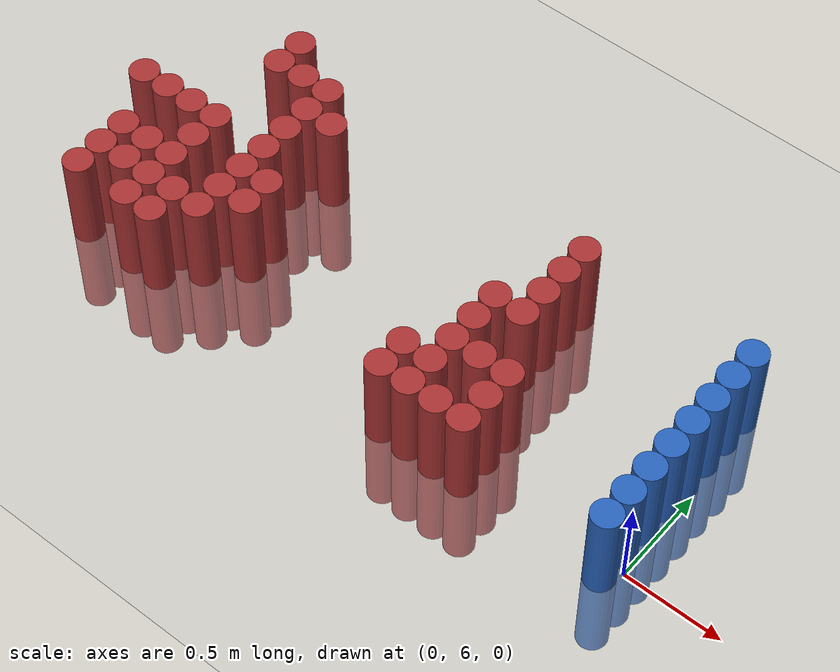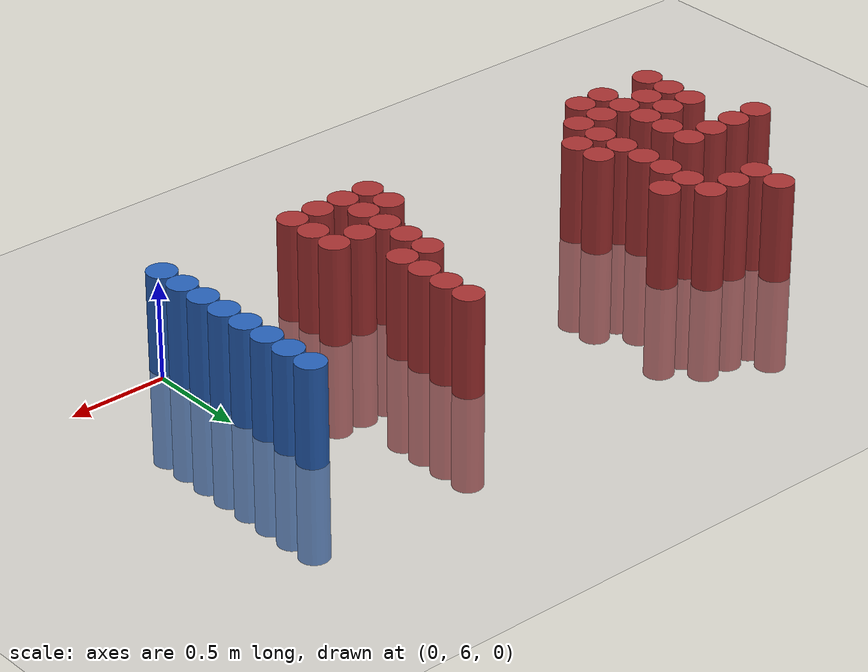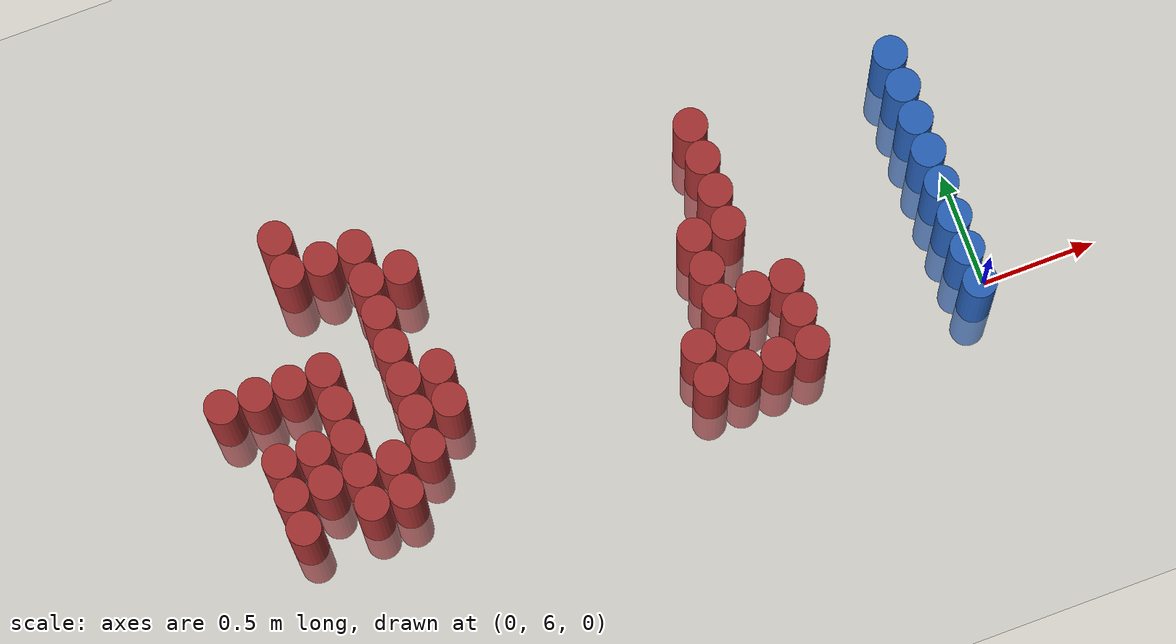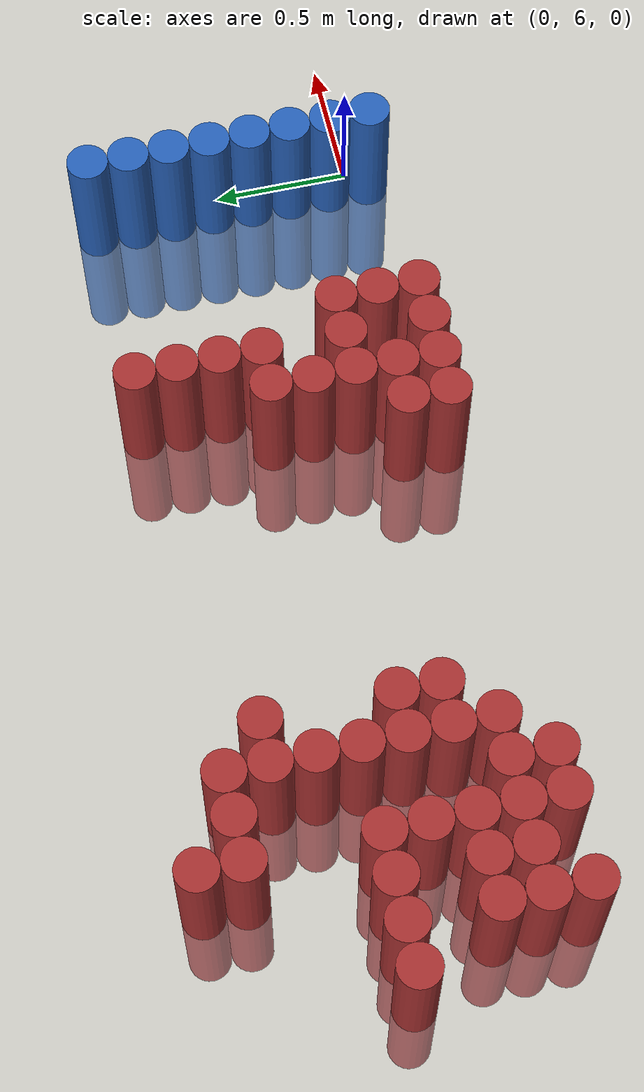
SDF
<sdf version="1.6">
 <world name="default">
  <model name="ground_plane">
   <static>1</static>
   <link name="link">
    <collision name="collision">
     <geometry><plane><normal>0 0 1</normal><size>100 100</size></plane></geometry>
     <surface><friction><ode><mu>100</mu><mu2>50</mu2></ode></friction></surface>
    </collision>
    <visual name="visual">
     <cast_shadows>0</cast_shadows>
     <geometry><plane><normal>0 0 1</normal><size>100 100</size></plane></geometry>
     <material>
      <script><uri>file://media/materials/scripts/gazebo.material</uri><name>Gazebo/Grey</name></script>
     </material>
    </visual>
   </link>
  </model>
  <model name="unit_cylinder_173">
   <static>1</static>
   <pose>-3.225000 6.525000 0.000000 0.000000 0.000000 0.000000</pose>
   <link name="link">
    <inertial>
     <mass>1</mass>
     <inertia><ixx>0.145833</ixx><ixy>0</ixy><ixz>0</ixz><iyy>0.145833</iyy><iyz>0</iyz><izz>0.125</izz></inertia>
    </inertial>
    <collision name="collision">
     <geometry><cylinder><radius>0.075000</radius><length>1</length></cylinder></geometry>
    </collision>
    <visual name="visual">
     <geometry><cylinder><radius>0.075000</radius><length>1</length></cylinder></geometry>
     <material>
      <ambient>0.648000 0.192000 0.192000 1</ambient>
      <diffuse>0.648000 0.192000 0.192000 1</diffuse>
     </material>
     <material>
      <script><name>Gazebo/Grey</name><uri>file://media/materials/scripts/gazebo.material</uri></script>
     </material>
    </visual>
   </link>
  </model>
  <model name="unit_cylinder_182">
   <static>1</static>
   <pose>-3.075000 5.925000 0.000000 0.000000 0.000000 0.000000</pose>
   <link name="link">
    <inertial>
     <mass>1</mass>
     <inertia><ixx>0.145833</ixx><ixy>0</ixy><ixz>0</ixz><iyy>0.145833</iyy><iyz>0</iyz><izz>0.125</izz></inertia>
    </inertial>
    <collision name="collision">
     <geometry><cylinder><radius>0.075000</radius><length>1</length></cylinder></geometry>
    </collision>
    <visual name="visual">
     <geometry><cylinder><radius>0.075000</radius><length>1</length></cylinder></geometry>
     <material>
      <ambient>0.648000 0.192000 0.192000 1</ambient>
      <diffuse>0.648000 0.192000 0.192000 1</diffuse>
     </material>
     <material>
      <script><name>Gazebo/Grey</name><uri>file://media/materials/scripts/gazebo.material</uri></script>
     </material>
    </visual>
   </link>
  </model>
  <model name="unit_cylinder_183">
   <static>1</static>
   <pose>-3.075000 6.075000 0.000000 0.000000 0.000000 0.000000</pose>
   <link name="link">
    <inertial>
     <mass>1</mass>
     <inertia><ixx>0.145833</ixx><ixy>0</ixy><ixz>0</ixz><iyy>0.145833</iyy><iyz>0</iyz><izz>0.125</izz></inertia>
    </inertial>
    <collision name="collision">
     <geometry><cylinder><radius>0.075000</radius><length>1</length></cylinder></geometry>
    </collision>
    <visual name="visual">
     <geometry><cylinder><radius>0.075000</radius><length>1</length></cylinder></geometry>
     <material>
      <ambient>0.648000 0.192000 0.192000 1</ambient>
      <diffuse>0.648000 0.192000 0.192000 1</diffuse>
     </material>
     <material>
      <script><name>Gazebo/Grey</name><uri>file://media/materials/scripts/gazebo.material</uri></script>
     </material>
    </visual>
   </link>
  </model>
  <model name="unit_cylinder_184">
   <static>1</static>
   <pose>-3.075000 6.225000 0.000000 0.000000 0.000000 0.000000</pose>
   <link name="link">
    <inertial>
     <mass>1</mass>
     <inertia><ixx>0.145833</ixx><ixy>0</ixy><ixz>0</ixz><iyy>0.145833</iyy><iyz>0</iyz><izz>0.125</izz></inertia>
    </inertial>
    <collision name="collision">
     <geometry><cylinder><radius>0.075000</radius><length>1</length></cylinder></geometry>
    </collision>
    <visual name="visual">
     <geometry><cylinder><radius>0.075000</radius><length>1</length></cylinder></geometry>
     <material>
      <ambient>0.648000 0.192000 0.192000 1</ambient>
      <diffuse>0.648000 0.192000 0.192000 1</diffuse>
     </material>
     <material>
      <script><name>Gazebo/Grey</name><uri>file://media/materials/scripts/gazebo.material</uri></script>
     </material>
    </visual>
   </link>
  </model>
  <model name="unit_cylinder_185">
   <static>1</static>
   <pose>-3.075000 6.525000 0.000000 0.000000 0.000000 0.000000</pose>
   <link name="link">
    <inertial>
     <mass>1</mass>
     <inertia><ixx>0.145833</ixx><ixy>0</ixy><ixz>0</ixz><iyy>0.145833</iyy><iyz>0</iyz><izz>0.125</izz></inertia>
    </inertial>
    <collision name="collision">
     <geometry><cylinder><radius>0.075000</radius><length>1</length></cylinder></geometry>
    </collision>
    <visual name="visual">
     <geometry><cylinder><radius>0.075000</radius><length>1</length></cylinder></geometry>
     <material>
      <ambient>0.648000 0.192000 0.192000 1</ambient>
      <diffuse>0.648000 0.192000 0.192000 1</diffuse>
     </material>
     <material>
      <script><name>Gazebo/Grey</name><uri>file://media/materials/scripts/gazebo.material</uri></script>
     </material>
    </visual>
   </link>
  </model>
  <model name="unit_cylinder_193">
   <static>1</static>
   <pose>-2.925000 6.075000 0.000000 0.000000 0.000000 0.000000</pose>
   <link name="link">
    <inertial>
     <mass>1</mass>
     <inertia><ixx>0.145833</ixx><ixy>0</ixy><ixz>0</ixz><iyy>0.145833</iyy><iyz>0</iyz><izz>0.125</izz></inertia>
    </inertial>
    <collision name="collision">
     <geometry><cylinder><radius>0.075000</radius><length>1</length></cylinder></geometry>
    </collision>
    <visual name="visual">
     <geometry><cylinder><radius>0.075000</radius><length>1</length></cylinder></geometry>
     <material>
      <ambient>0.648000 0.192000 0.192000 1</ambient>
      <diffuse>0.648000 0.192000 0.192000 1</diffuse>
     </material>
     <material>
      <script><name>Gazebo/Grey</name><uri>file://media/materials/scripts/gazebo.material</uri></script>
     </material>
    </visual>
   </link>
  </model>
  <model name="unit_cylinder_194">
   <static>1</static>
   <pose>-2.925000 6.225000 0.000000 0.000000 0.000000 0.000000</pose>
   <link name="link">
    <inertial>
     <mass>1</mass>
     <inertia><ixx>0.145833</ixx><ixy>0</ixy><ixz>0</ixz><iyy>0.145833</iyy><iyz>0</iyz><izz>0.125</izz></inertia>
    </inertial>
    <collision name="collision">
     <geometry><cylinder><radius>0.075000</radius><length>1</length></cylinder></geometry>
    </collision>
    <visual name="visual">
     <geometry><cylinder><radius>0.075000</radius><length>1</length></cylinder></geometry>
     <material>
      <ambient>0.648000 0.192000 0.192000 1</ambient>
      <diffuse>0.648000 0.192000 0.192000 1</diffuse>
     </material>
     <material>
      <script><name>Gazebo/Grey</name><uri>file://media/materials/scripts/gazebo.material</uri></script>
     </material>
    </visual>
   </link>
  </model>
  <model name="unit_cylinder_195">
   <static>1</static>
   <pose>-2.925000 6.525000 0.000000 0.000000 0.000000 0.000000</pose>
   <link name="link">
    <inertial>
     <mass>1</mass>
     <inertia><ixx>0.145833</ixx><ixy>0</ixy><ixz>0</ixz><iyy>0.145833</iyy><iyz>0</iyz><izz>0.125</izz></inertia>
    </inertial>
    <collision name="collision">
     <geometry><cylinder><radius>0.075000</radius><length>1</length></cylinder></geometry>
    </collision>
    <visual name="visual">
     <geometry><cylinder><radius>0.075000</radius><length>1</length></cylinder></geometry>
     <material>
      <ambient>0.648000 0.192000 0.192000 1</ambient>
      <diffuse>0.648000 0.192000 0.192000 1</diffuse>
     </material>
     <material>
      <script><name>Gazebo/Grey</name><uri>file://media/materials/scripts/gazebo.material</uri></script>
     </material>
    </visual>
   </link>
  </model>
  <model name="unit_cylinder_199">
   <static>1</static>
   <pose>-2.775000 5.925000 0.000000 0.000000 0.000000 0.000000</pose>
   <link name="link">
    <inertial>
     <mass>1</mass>
     <inertia><ixx>0.145833</ixx><ixy>0</ixy><ixz>0</ixz><iyy>0.145833</iyy><iyz>0</iyz><izz>0.125</izz></inertia>
    </inertial>
    <collision name="collision">
     <geometry><cylinder><radius>0.075000</radius><length>1</length></cylinder></geometry>
    </collision>
    <visual name="visual">
     <geometry><cylinder><radius>0.075000</radius><length>1</length></cylinder></geometry>
     <material>
      <ambient>0.648000 0.192000 0.192000 1</ambient>
      <diffuse>0.648000 0.192000 0.192000 1</diffuse>
     </material>
     <material>
      <script><name>Gazebo/Grey</name><uri>file://media/materials/scripts/gazebo.material</uri></script>
     </material>
    </visual>
   </link>
  </model>
  <model name="unit_cylinder_200">
   <static>1</static>
   <pose>-2.775000 6.075000 0.000000 0.000000 0.000000 0.000000</pose>
   <link name="link">
    <inertial>
     <mass>1</mass>
     <inertia><ixx>0.145833</ixx><ixy>0</ixy><ixz>0</ixz><iyy>0.145833</iyy><iyz>0</iyz><izz>0.125</izz></inertia>
    </inertial>
    <collision name="collision">
     <geometry><cylinder><radius>0.075000</radius><length>1</length></cylinder></geometry>
    </collision>
    <visual name="visual">
     <geometry><cylinder><radius>0.075000</radius><length>1</length></cylinder></geometry>
     <material>
      <ambient>0.648000 0.192000 0.192000 1</ambient>
      <diffuse>0.648000 0.192000 0.192000 1</diffuse>
     </material>
     <material>
      <script><name>Gazebo/Grey</name><uri>file://media/materials/scripts/gazebo.material</uri></script>
     </material>
    </visual>
   </link>
  </model>
  <model name="unit_cylinder_201">
   <static>1</static>
   <pose>-2.775000 6.225000 0.000000 0.000000 0.000000 0.000000</pose>
   <link name="link">
    <inertial>
     <mass>1</mass>
     <inertia><ixx>0.145833</ixx><ixy>0</ixy><ixz>0</ixz><iyy>0.145833</iyy><iyz>0</iyz><izz>0.125</izz></inertia>
    </inertial>
    <collision name="collision">
     <geometry><cylinder><radius>0.075000</radius><length>1</length></cylinder></geometry>
    </collision>
    <visual name="visual">
     <geometry><cylinder><radius>0.075000</radius><length>1</length></cylinder></geometry>
     <material>
      <ambient>0.648000 0.192000 0.192000 1</ambient>
      <diffuse>0.648000 0.192000 0.192000 1</diffuse>
     </material>
     <material>
      <script><name>Gazebo/Grey</name><uri>file://media/materials/scripts/gazebo.material</uri></script>
     </material>
    </visual>
   </link>
  </model>
  <model name="unit_cylinder_202">
   <static>1</static>
   <pose>-2.775000 6.375000 0.000000 0.000000 0.000000 0.000000</pose>
   <link name="link">
    <inertial>
     <mass>1</mass>
     <inertia><ixx>0.145833</ixx><ixy>0</ixy><ixz>0</ixz><iyy>0.145833</iyy><iyz>0</iyz><izz>0.125</izz></inertia>
    </inertial>
    <collision name="collision">
     <geometry><cylinder><radius>0.075000</radius><length>1</length></cylinder></geometry>
    </collision>
    <visual name="visual">
     <geometry><cylinder><radius>0.075000</radius><length>1</length></cylinder></geometry>
     <material>
      <ambient>0.648000 0.192000 0.192000 1</ambient>
      <diffuse>0.648000 0.192000 0.192000 1</diffuse>
     </material>
     <material>
      <script><name>Gazebo/Grey</name><uri>file://media/materials/scripts/gazebo.material</uri></script>
     </material>
    </visual>
   </link>
  </model>
  <model name="unit_cylinder_203">
   <static>1</static>
   <pose>-2.775000 6.525000 0.000000 0.000000 0.000000 0.000000</pose>
   <link name="link">
    <inertial>
     <mass>1</mass>
     <inertia><ixx>0.145833</ixx><ixy>0</ixy><ixz>0</ixz><iyy>0.145833</iyy><iyz>0</iyz><izz>0.125</izz></inertia>
    </inertial>
    <collision name="collision">
     <geometry><cylinder><radius>0.075000</radius><length>1</length></cylinder></geometry>
    </collision>
    <visual name="visual">
     <geometry><cylinder><radius>0.075000</radius><length>1</length></cylinder></geometry>
     <material>
      <ambient>0.648000 0.192000 0.192000 1</ambient>
      <diffuse>0.648000 0.192000 0.192000 1</diffuse>
     </material>
     <material>
      <script><name>Gazebo/Grey</name><uri>file://media/materials/scripts/gazebo.material</uri></script>
     </material>
    </visual>
   </link>
  </model>
  <model name="unit_cylinder_204">
   <static>1</static>
   <pose>-2.775000 6.975000 0.000000 0.000000 0.000000 0.000000</pose>
   <link name="link">
    <inertial>
     <mass>1</mass>
     <inertia><ixx>0.145833</ixx><ixy>0</ixy><ixz>0</ixz><iyy>0.145833</iyy><iyz>0</iyz><izz>0.125</izz></inertia>
    </inertial>
    <collision name="collision">
     <geometry><cylinder><radius>0.075000</radius><length>1</length></cylinder></geometry>
    </collision>
    <visual name="visual">
     <geometry><cylinder><radius>0.075000</radius><length>1</length></cylinder></geometry>
     <material>
      <ambient>0.648000 0.192000 0.192000 1</ambient>
      <diffuse>0.648000 0.192000 0.192000 1</diffuse>
     </material>
     <material>
      <script><name>Gazebo/Grey</name><uri>file://media/materials/scripts/gazebo.material</uri></script>
     </material>
    </visual>
   </link>
  </model>
  <model name="unit_cylinder_205">
   <static>1</static>
   <pose>-2.775000 7.125000 0.000000 0.000000 0.000000 0.000000</pose>
   <link name="link">
    <inertial>
     <mass>1</mass>
     <inertia><ixx>0.145833</ixx><ixy>0</ixy><ixz>0</ixz><iyy>0.145833</iyy><iyz>0</iyz><izz>0.125</izz></inertia>
    </inertial>
    <collision name="collision">
     <geometry><cylinder><radius>0.075000</radius><length>1</length></cylinder></geometry>
    </collision>
    <visual name="visual">
     <geometry><cylinder><radius>0.075000</radius><length>1</length></cylinder></geometry>
     <material>
      <ambient>0.648000 0.192000 0.192000 1</ambient>
      <diffuse>0.648000 0.192000 0.192000 1</diffuse>
     </material>
     <material>
      <script><name>Gazebo/Grey</name><uri>file://media/materials/scripts/gazebo.material</uri></script>
     </material>
    </visual>
   </link>
  </model>
  <model name="unit_cylinder_210">
   <static>1</static>
   <pose>-2.625000 5.925000 0.000000 0.000000 0.000000 0.000000</pose>
   <link name="link">
    <inertial>
     <mass>1</mass>
     <inertia><ixx>0.145833</ixx><ixy>0</ixy><ixz>0</ixz><iyy>0.145833</iyy><iyz>0</iyz><izz>0.125</izz></inertia>
    </inertial>
    <collision name="collision">
     <geometry><cylinder><radius>0.075000</radius><length>1</length></cylinder></geometry>
    </collision>
    <visual name="visual">
     <geometry><cylinder><radius>0.075000</radius><length>1</length></cylinder></geometry>
     <material>
      <ambient>0.648000 0.192000 0.192000 1</ambient>
      <diffuse>0.648000 0.192000 0.192000 1</diffuse>
     </material>
     <material>
      <script><name>Gazebo/Grey</name><uri>file://media/materials/scripts/gazebo.material</uri></script>
     </material>
    </visual>
   </link>
  </model>
  <model name="unit_cylinder_211">
   <static>1</static>
   <pose>-2.625000 6.075000 0.000000 0.000000 0.000000 0.000000</pose>
   <link name="link">
    <inertial>
     <mass>1</mass>
     <inertia><ixx>0.145833</ixx><ixy>0</ixy><ixz>0</ixz><iyy>0.145833</iyy><iyz>0</iyz><izz>0.125</izz></inertia>
    </inertial>
    <collision name="collision">
     <geometry><cylinder><radius>0.075000</radius><length>1</length></cylinder></geometry>
    </collision>
    <visual name="visual">
     <geometry><cylinder><radius>0.075000</radius><length>1</length></cylinder></geometry>
     <material>
      <ambient>0.648000 0.192000 0.192000 1</ambient>
      <diffuse>0.648000 0.192000 0.192000 1</diffuse>
     </material>
     <material>
      <script><name>Gazebo/Grey</name><uri>file://media/materials/scripts/gazebo.material</uri></script>
     </material>
    </visual>
   </link>
  </model>
  <model name="unit_cylinder_212">
   <static>1</static>
   <pose>-2.625000 6.975000 0.000000 0.000000 0.000000 0.000000</pose>
   <link name="link">
    <inertial>
     <mass>1</mass>
     <inertia><ixx>0.145833</ixx><ixy>0</ixy><ixz>0</ixz><iyy>0.145833</iyy><iyz>0</iyz><izz>0.125</izz></inertia>
    </inertial>
    <collision name="collision">
     <geometry><cylinder><radius>0.075000</radius><length>1</length></cylinder></geometry>
    </collision>
    <visual name="visual">
     <geometry><cylinder><radius>0.075000</radius><length>1</length></cylinder></geometry>
     <material>
      <ambient>0.648000 0.192000 0.192000 1</ambient>
      <diffuse>0.648000 0.192000 0.192000 1</diffuse>
     </material>
     <material>
      <script><name>Gazebo/Grey</name><uri>file://media/materials/scripts/gazebo.material</uri></script>
     </material>
    </visual>
   </link>
  </model>
  <model name="unit_cylinder_216">
   <static>1</static>
   <pose>-2.475000 6.075000 0.000000 0.000000 0.000000 0.000000</pose>
   <link name="link">
    <inertial>
     <mass>1</mass>
     <inertia><ixx>0.145833</ixx><ixy>0</ixy><ixz>0</ixz><iyy>0.145833</iyy><iyz>0</iyz><izz>0.125</izz></inertia>
    </inertial>
    <collision name="collision">
     <geometry><cylinder><radius>0.075000</radius><length>1</length></cylinder></geometry>
    </collision>
    <visual name="visual">
     <geometry><cylinder><radius>0.075000</radius><length>1</length></cylinder></geometry>
     <material>
      <ambient>0.648000 0.192000 0.192000 1</ambient>
      <diffuse>0.648000 0.192000 0.192000 1</diffuse>
     </material>
     <material>
      <script><name>Gazebo/Grey</name><uri>file://media/materials/scripts/gazebo.material</uri></script>
     </material>
    </visual>
   </link>
  </model>
  <model name="unit_cylinder_217">
   <static>1</static>
   <pose>-2.475000 6.225000 0.000000 0.000000 0.000000 0.000000</pose>
   <link name="link">
    <inertial>
     <mass>1</mass>
     <inertia><ixx>0.145833</ixx><ixy>0</ixy><ixz>0</ixz><iyy>0.145833</iyy><iyz>0</iyz><izz>0.125</izz></inertia>
    </inertial>
    <collision name="collision">
     <geometry><cylinder><radius>0.075000</radius><length>1</length></cylinder></geometry>
    </collision>
    <visual name="visual">
     <geometry><cylinder><radius>0.075000</radius><length>1</length></cylinder></geometry>
     <material>
      <ambient>0.648000 0.192000 0.192000 1</ambient>
      <diffuse>0.648000 0.192000 0.192000 1</diffuse>
     </material>
     <material>
      <script><name>Gazebo/Grey</name><uri>file://media/materials/scripts/gazebo.material</uri></script>
     </material>
    </visual>
   </link>
  </model>
  <model name="unit_cylinder_218">
   <static>1</static>
   <pose>-2.475000 6.375000 0.000000 0.000000 0.000000 0.000000</pose>
   <link name="link">
    <inertial>
     <mass>1</mass>
     <inertia><ixx>0.145833</ixx><ixy>0</ixy><ixz>0</ixz><iyy>0.145833</iyy><iyz>0</iyz><izz>0.125</izz></inertia>
    </inertial>
    <collision name="collision">
     <geometry><cylinder><radius>0.075000</radius><length>1</length></cylinder></geometry>
    </collision>
    <visual name="visual">
     <geometry><cylinder><radius>0.075000</radius><length>1</length></cylinder></geometry>
     <material>
      <ambient>0.648000 0.192000 0.192000 1</ambient>
      <diffuse>0.648000 0.192000 0.192000 1</diffuse>
     </material>
     <material>
      <script><name>Gazebo/Grey</name><uri>file://media/materials/scripts/gazebo.material</uri></script>
     </material>
    </visual>
   </link>
  </model>
  <model name="unit_cylinder_219">
   <static>1</static>
   <pose>-2.475000 6.525000 0.000000 0.000000 0.000000 0.000000</pose>
   <link name="link">
    <inertial>
     <mass>1</mass>
     <inertia><ixx>0.145833</ixx><ixy>0</ixy><ixz>0</ixz><iyy>0.145833</iyy><iyz>0</iyz><izz>0.125</izz></inertia>
    </inertial>
    <collision name="collision">
     <geometry><cylinder><radius>0.075000</radius><length>1</length></cylinder></geometry>
    </collision>
    <visual name="visual">
     <geometry><cylinder><radius>0.075000</radius><length>1</length></cylinder></geometry>
     <material>
      <ambient>0.648000 0.192000 0.192000 1</ambient>
      <diffuse>0.648000 0.192000 0.192000 1</diffuse>
     </material>
     <material>
      <script><name>Gazebo/Grey</name><uri>file://media/materials/scripts/gazebo.material</uri></script>
     </material>
    </visual>
   </link>
  </model>
  <model name="unit_cylinder_220">
   <static>1</static>
   <pose>-2.475000 6.675000 0.000000 0.000000 0.000000 0.000000</pose>
   <link name="link">
    <inertial>
     <mass>1</mass>
     <inertia><ixx>0.145833</ixx><ixy>0</ixy><ixz>0</ixz><iyy>0.145833</iyy><iyz>0</iyz><izz>0.125</izz></inertia>
    </inertial>
    <collision name="collision">
     <geometry><cylinder><radius>0.075000</radius><length>1</length></cylinder></geometry>
    </collision>
    <visual name="visual">
     <geometry><cylinder><radius>0.075000</radius><length>1</length></cylinder></geometry>
     <material>
      <ambient>0.648000 0.192000 0.192000 1</ambient>
      <diffuse>0.648000 0.192000 0.192000 1</diffuse>
     </material>
     <material>
      <script><name>Gazebo/Grey</name><uri>file://media/materials/scripts/gazebo.material</uri></script>
     </material>
    </visual>
   </link>
  </model>
  <model name="unit_cylinder_221">
   <static>1</static>
   <pose>-2.475000 6.825000 0.000000 0.000000 0.000000 0.000000</pose>
   <link name="link">
    <inertial>
     <mass>1</mass>
     <inertia><ixx>0.145833</ixx><ixy>0</ixy><ixz>0</ixz><iyy>0.145833</iyy><iyz>0</iyz><izz>0.125</izz></inertia>
    </inertial>
    <collision name="collision">
     <geometry><cylinder><radius>0.075000</radius><length>1</length></cylinder></geometry>
    </collision>
    <visual name="visual">
     <geometry><cylinder><radius>0.075000</radius><length>1</length></cylinder></geometry>
     <material>
      <ambient>0.648000 0.192000 0.192000 1</ambient>
      <diffuse>0.648000 0.192000 0.192000 1</diffuse>
     </material>
     <material>
      <script><name>Gazebo/Grey</name><uri>file://media/materials/scripts/gazebo.material</uri></script>
     </material>
    </visual>
   </link>
  </model>
  <model name="unit_cylinder_222">
   <static>1</static>
   <pose>-2.475000 6.975000 0.000000 0.000000 0.000000 0.000000</pose>
   <link name="link">
    <inertial>
     <mass>1</mass>
     <inertia><ixx>0.145833</ixx><ixy>0</ixy><ixz>0</ixz><iyy>0.145833</iyy><iyz>0</iyz><izz>0.125</izz></inertia>
    </inertial>
    <collision name="collision">
     <geometry><cylinder><radius>0.075000</radius><length>1</length></cylinder></geometry>
    </collision>
    <visual name="visual">
     <geometry><cylinder><radius>0.075000</radius><length>1</length></cylinder></geometry>
     <material>
      <ambient>0.648000 0.192000 0.192000 1</ambient>
      <diffuse>0.648000 0.192000 0.192000 1</diffuse>
     </material>
     <material>
      <script><name>Gazebo/Grey</name><uri>file://media/materials/scripts/gazebo.material</uri></script>
     </material>
    </visual>
   </link>
  </model>
  <model name="unit_cylinder_226">
   <static>1</static>
   <pose>-2.325000 6.225000 0.000000 0.000000 0.000000 0.000000</pose>
   <link name="link">
    <inertial>
     <mass>1</mass>
     <inertia><ixx>0.145833</ixx><ixy>0</ixy><ixz>0</ixz><iyy>0.145833</iyy><iyz>0</iyz><izz>0.125</izz></inertia>
    </inertial>
    <collision name="collision">
     <geometry><cylinder><radius>0.075000</radius><length>1</length></cylinder></geometry>
    </collision>
    <visual name="visual">
     <geometry><cylinder><radius>0.075000</radius><length>1</length></cylinder></geometry>
     <material>
      <ambient>0.648000 0.192000 0.192000 1</ambient>
      <diffuse>0.648000 0.192000 0.192000 1</diffuse>
     </material>
     <material>
      <script><name>Gazebo/Grey</name><uri>file://media/materials/scripts/gazebo.material</uri></script>
     </material>
    </visual>
   </link>
  </model>
  <model name="unit_cylinder_227">
   <static>1</static>
   <pose>-2.325000 6.375000 0.000000 0.000000 0.000000 0.000000</pose>
   <link name="link">
    <inertial>
     <mass>1</mass>
     <inertia><ixx>0.145833</ixx><ixy>0</ixy><ixz>0</ixz><iyy>0.145833</iyy><iyz>0</iyz><izz>0.125</izz></inertia>
    </inertial>
    <collision name="collision">
     <geometry><cylinder><radius>0.075000</radius><length>1</length></cylinder></geometry>
    </collision>
    <visual name="visual">
     <geometry><cylinder><radius>0.075000</radius><length>1</length></cylinder></geometry>
     <material>
      <ambient>0.648000 0.192000 0.192000 1</ambient>
      <diffuse>0.648000 0.192000 0.192000 1</diffuse>
     </material>
     <material>
      <script><name>Gazebo/Grey</name><uri>file://media/materials/scripts/gazebo.material</uri></script>
     </material>
    </visual>
   </link>
  </model>
  <model name="unit_cylinder_228">
   <static>1</static>
   <pose>-2.325000 6.825000 0.000000 0.000000 0.000000 0.000000</pose>
   <link name="link">
    <inertial>
     <mass>1</mass>
     <inertia><ixx>0.145833</ixx><ixy>0</ixy><ixz>0</ixz><iyy>0.145833</iyy><iyz>0</iyz><izz>0.125</izz></inertia>
    </inertial>
    <collision name="collision">
     <geometry><cylinder><radius>0.075000</radius><length>1</length></cylinder></geometry>
    </collision>
    <visual name="visual">
     <geometry><cylinder><radius>0.075000</radius><length>1</length></cylinder></geometry>
     <material>
      <ambient>0.648000 0.192000 0.192000 1</ambient>
      <diffuse>0.648000 0.192000 0.192000 1</diffuse>
     </material>
     <material>
      <script><name>Gazebo/Grey</name><uri>file://media/materials/scripts/gazebo.material</uri></script>
     </material>
    </visual>
   </link>
  </model>
  <model name="unit_cylinder_239">
   <static>1</static>
   <pose>-1.275000 5.925000 0.000000 0.000000 0.000000 0.000000</pose>
   <link name="link">
    <inertial>
     <mass>1</mass>
     <inertia><ixx>0.145833</ixx><ixy>0</ixy><ixz>0</ixz><iyy>0.145833</iyy><iyz>0</iyz><izz>0.125</izz></inertia>
    </inertial>
    <collision name="collision">
     <geometry><cylinder><radius>0.075000</radius><length>1</length></cylinder></geometry>
    </collision>
    <visual name="visual">
     <geometry><cylinder><radius>0.075000</radius><length>1</length></cylinder></geometry>
     <material>
      <ambient>0.648000 0.192000 0.192000 1</ambient>
      <diffuse>0.648000 0.192000 0.192000 1</diffuse>
     </material>
     <material>
      <script><name>Gazebo/Grey</name><uri>file://media/materials/scripts/gazebo.material</uri></script>
     </material>
    </visual>
   </link>
  </model>
  <model name="unit_cylinder_240">
   <static>1</static>
   <pose>-1.275000 6.075000 0.000000 0.000000 0.000000 0.000000</pose>
   <link name="link">
    <inertial>
     <mass>1</mass>
     <inertia><ixx>0.145833</ixx><ixy>0</ixy><ixz>0</ixz><iyy>0.145833</iyy><iyz>0</iyz><izz>0.125</izz></inertia>
    </inertial>
    <collision name="collision">
     <geometry><cylinder><radius>0.075000</radius><length>1</length></cylinder></geometry>
    </collision>
    <visual name="visual">
     <geometry><cylinder><radius>0.075000</radius><length>1</length></cylinder></geometry>
     <material>
      <ambient>0.648000 0.192000 0.192000 1</ambient>
      <diffuse>0.648000 0.192000 0.192000 1</diffuse>
     </material>
     <material>
      <script><name>Gazebo/Grey</name><uri>file://media/materials/scripts/gazebo.material</uri></script>
     </material>
    </visual>
   </link>
  </model>
  <model name="unit_cylinder_244">
   <static>1</static>
   <pose>-1.125000 5.925000 0.000000 0.000000 0.000000 0.000000</pose>
   <link name="link">
    <inertial>
     <mass>1</mass>
     <inertia><ixx>0.145833</ixx><ixy>0</ixy><ixz>0</ixz><iyy>0.145833</iyy><iyz>0</iyz><izz>0.125</izz></inertia>
    </inertial>
    <collision name="collision">
     <geometry><cylinder><radius>0.075000</radius><length>1</length></cylinder></geometry>
    </collision>
    <visual name="visual">
     <geometry><cylinder><radius>0.075000</radius><length>1</length></cylinder></geometry>
     <material>
      <ambient>0.648000 0.192000 0.192000 1</ambient>
      <diffuse>0.648000 0.192000 0.192000 1</diffuse>
     </material>
     <material>
      <script><name>Gazebo/Grey</name><uri>file://media/materials/scripts/gazebo.material</uri></script>
     </material>
    </visual>
   </link>
  </model>
  <model name="unit_cylinder_245">
   <static>1</static>
   <pose>-1.125000 6.075000 0.000000 0.000000 0.000000 0.000000</pose>
   <link name="link">
    <inertial>
     <mass>1</mass>
     <inertia><ixx>0.145833</ixx><ixy>0</ixy><ixz>0</ixz><iyy>0.145833</iyy><iyz>0</iyz><izz>0.125</izz></inertia>
    </inertial>
    <collision name="collision">
     <geometry><cylinder><radius>0.075000</radius><length>1</length></cylinder></geometry>
    </collision>
    <visual name="visual">
     <geometry><cylinder><radius>0.075000</radius><length>1</length></cylinder></geometry>
     <material>
      <ambient>0.648000 0.192000 0.192000 1</ambient>
      <diffuse>0.648000 0.192000 0.192000 1</diffuse>
     </material>
     <material>
      <script><name>Gazebo/Grey</name><uri>file://media/materials/scripts/gazebo.material</uri></script>
     </material>
    </visual>
   </link>
  </model>
  <model name="unit_cylinder_246">
   <static>1</static>
   <pose>-1.125000 6.225000 0.000000 0.000000 0.000000 0.000000</pose>
   <link name="link">
    <inertial>
     <mass>1</mass>
     <inertia><ixx>0.145833</ixx><ixy>0</ixy><ixz>0</ixz><iyy>0.145833</iyy><iyz>0</iyz><izz>0.125</izz></inertia>
    </inertial>
    <collision name="collision">
     <geometry><cylinder><radius>0.075000</radius><length>1</length></cylinder></geometry>
    </collision>
    <visual name="visual">
     <geometry><cylinder><radius>0.075000</radius><length>1</length></cylinder></geometry>
     <material>
      <ambient>0.648000 0.192000 0.192000 1</ambient>
      <diffuse>0.648000 0.192000 0.192000 1</diffuse>
     </material>
     <material>
      <script><name>Gazebo/Grey</name><uri>file://media/materials/scripts/gazebo.material</uri></script>
     </material>
    </visual>
   </link>
  </model>
  <model name="unit_cylinder_247">
   <static>1</static>
   <pose>-1.125000 6.375000 0.000000 0.000000 0.000000 0.000000</pose>
   <link name="link">
    <inertial>
     <mass>1</mass>
     <inertia><ixx>0.145833</ixx><ixy>0</ixy><ixz>0</ixz><iyy>0.145833</iyy><iyz>0</iyz><izz>0.125</izz></inertia>
    </inertial>
    <collision name="collision">
     <geometry><cylinder><radius>0.075000</radius><length>1</length></cylinder></geometry>
    </collision>
    <visual name="visual">
     <geometry><cylinder><radius>0.075000</radius><length>1</length></cylinder></geometry>
     <material>
      <ambient>0.648000 0.192000 0.192000 1</ambient>
      <diffuse>0.648000 0.192000 0.192000 1</diffuse>
     </material>
     <material>
      <script><name>Gazebo/Grey</name><uri>file://media/materials/scripts/gazebo.material</uri></script>
     </material>
    </visual>
   </link>
  </model>
  <model name="unit_cylinder_248">
   <static>1</static>
   <pose>-1.125000 6.525000 0.000000 0.000000 0.000000 0.000000</pose>
   <link name="link">
    <inertial>
     <mass>1</mass>
     <inertia><ixx>0.145833</ixx><ixy>0</ixy><ixz>0</ixz><iyy>0.145833</iyy><iyz>0</iyz><izz>0.125</izz></inertia>
    </inertial>
    <collision name="collision">
     <geometry><cylinder><radius>0.075000</radius><length>1</length></cylinder></geometry>
    </collision>
    <visual name="visual">
     <geometry><cylinder><radius>0.075000</radius><length>1</length></cylinder></geometry>
     <material>
      <ambient>0.648000 0.192000 0.192000 1</ambient>
      <diffuse>0.648000 0.192000 0.192000 1</diffuse>
     </material>
     <material>
      <script><name>Gazebo/Grey</name><uri>file://media/materials/scripts/gazebo.material</uri></script>
     </material>
    </visual>
   </link>
  </model>
  <model name="unit_cylinder_253">
   <static>1</static>
   <pose>-0.975000 5.925000 0.000000 0.000000 0.000000 0.000000</pose>
   <link name="link">
    <inertial>
     <mass>1</mass>
     <inertia><ixx>0.145833</ixx><ixy>0</ixy><ixz>0</ixz><iyy>0.145833</iyy><iyz>0</iyz><izz>0.125</izz></inertia>
    </inertial>
    <collision name="collision">
     <geometry><cylinder><radius>0.075000</radius><length>1</length></cylinder></geometry>
    </collision>
    <visual name="visual">
     <geometry><cylinder><radius>0.075000</radius><length>1</length></cylinder></geometry>
     <material>
      <ambient>0.648000 0.192000 0.192000 1</ambient>
      <diffuse>0.648000 0.192000 0.192000 1</diffuse>
     </material>
     <material>
      <script><name>Gazebo/Grey</name><uri>file://media/materials/scripts/gazebo.material</uri></script>
     </material>
    </visual>
   </link>
  </model>
  <model name="unit_cylinder_254">
   <static>1</static>
   <pose>-0.975000 6.225000 0.000000 0.000000 0.000000 0.000000</pose>
   <link name="link">
    <inertial>
     <mass>1</mass>
     <inertia><ixx>0.145833</ixx><ixy>0</ixy><ixz>0</ixz><iyy>0.145833</iyy><iyz>0</iyz><izz>0.125</izz></inertia>
    </inertial>
    <collision name="collision">
     <geometry><cylinder><radius>0.075000</radius><length>1</length></cylinder></geometry>
    </collision>
    <visual name="visual">
     <geometry><cylinder><radius>0.075000</radius><length>1</length></cylinder></geometry>
     <material>
      <ambient>0.648000 0.192000 0.192000 1</ambient>
      <diffuse>0.648000 0.192000 0.192000 1</diffuse>
     </material>
     <material>
      <script><name>Gazebo/Grey</name><uri>file://media/materials/scripts/gazebo.material</uri></script>
     </material>
    </visual>
   </link>
  </model>
  <model name="unit_cylinder_255">
   <static>1</static>
   <pose>-0.975000 6.525000 0.000000 0.000000 0.000000 0.000000</pose>
   <link name="link">
    <inertial>
     <mass>1</mass>
     <inertia><ixx>0.145833</ixx><ixy>0</ixy><ixz>0</ixz><iyy>0.145833</iyy><iyz>0</iyz><izz>0.125</izz></inertia>
    </inertial>
    <collision name="collision">
     <geometry><cylinder><radius>0.075000</radius><length>1</length></cylinder></geometry>
    </collision>
    <visual name="visual">
     <geometry><cylinder><radius>0.075000</radius><length>1</length></cylinder></geometry>
     <material>
      <ambient>0.648000 0.192000 0.192000 1</ambient>
      <diffuse>0.648000 0.192000 0.192000 1</diffuse>
     </material>
     <material>
      <script><name>Gazebo/Grey</name><uri>file://media/materials/scripts/gazebo.material</uri></script>
     </material>
    </visual>
   </link>
  </model>
  <model name="unit_cylinder_256">
   <static>1</static>
   <pose>-0.975000 6.675000 0.000000 0.000000 0.000000 0.000000</pose>
   <link name="link">
    <inertial>
     <mass>1</mass>
     <inertia><ixx>0.145833</ixx><ixy>0</ixy><ixz>0</ixz><iyy>0.145833</iyy><iyz>0</iyz><izz>0.125</izz></inertia>
    </inertial>
    <collision name="collision">
     <geometry><cylinder><radius>0.075000</radius><length>1</length></cylinder></geometry>
    </collision>
    <visual name="visual">
     <geometry><cylinder><radius>0.075000</radius><length>1</length></cylinder></geometry>
     <material>
      <ambient>0.648000 0.192000 0.192000 1</ambient>
      <diffuse>0.648000 0.192000 0.192000 1</diffuse>
     </material>
     <material>
      <script><name>Gazebo/Grey</name><uri>file://media/materials/scripts/gazebo.material</uri></script>
     </material>
    </visual>
   </link>
  </model>
  <model name="unit_cylinder_257">
   <static>1</static>
   <pose>-0.975000 6.825000 0.000000 0.000000 0.000000 0.000000</pose>
   <link name="link">
    <inertial>
     <mass>1</mass>
     <inertia><ixx>0.145833</ixx><ixy>0</ixy><ixz>0</ixz><iyy>0.145833</iyy><iyz>0</iyz><izz>0.125</izz></inertia>
    </inertial>
    <collision name="collision">
     <geometry><cylinder><radius>0.075000</radius><length>1</length></cylinder></geometry>
    </collision>
    <visual name="visual">
     <geometry><cylinder><radius>0.075000</radius><length>1</length></cylinder></geometry>
     <material>
      <ambient>0.648000 0.192000 0.192000 1</ambient>
      <diffuse>0.648000 0.192000 0.192000 1</diffuse>
     </material>
     <material>
      <script><name>Gazebo/Grey</name><uri>file://media/materials/scripts/gazebo.material</uri></script>
     </material>
    </visual>
   </link>
  </model>
  <model name="unit_cylinder_258">
   <static>1</static>
   <pose>-0.975000 6.975000 0.000000 0.000000 0.000000 0.000000</pose>
   <link name="link">
    <inertial>
     <mass>1</mass>
     <inertia><ixx>0.145833</ixx><ixy>0</ixy><ixz>0</ixz><iyy>0.145833</iyy><iyz>0</iyz><izz>0.125</izz></inertia>
    </inertial>
    <collision name="collision">
     <geometry><cylinder><radius>0.075000</radius><length>1</length></cylinder></geometry>
    </collision>
    <visual name="visual">
     <geometry><cylinder><radius>0.075000</radius><length>1</length></cylinder></geometry>
     <material>
      <ambient>0.648000 0.192000 0.192000 1</ambient>
      <diffuse>0.648000 0.192000 0.192000 1</diffuse>
     </material>
     <material>
      <script><name>Gazebo/Grey</name><uri>file://media/materials/scripts/gazebo.material</uri></script>
     </material>
    </visual>
   </link>
  </model>
  <model name="unit_cylinder_262">
   <static>1</static>
   <pose>-0.825000 5.925000 0.000000 0.000000 0.000000 0.000000</pose>
   <link name="link">
    <inertial>
     <mass>1</mass>
     <inertia><ixx>0.145833</ixx><ixy>0</ixy><ixz>0</ixz><iyy>0.145833</iyy><iyz>0</iyz><izz>0.125</izz></inertia>
    </inertial>
    <collision name="collision">
     <geometry><cylinder><radius>0.075000</radius><length>1</length></cylinder></geometry>
    </collision>
    <visual name="visual">
     <geometry><cylinder><radius>0.075000</radius><length>1</length></cylinder></geometry>
     <material>
      <ambient>0.648000 0.192000 0.192000 1</ambient>
      <diffuse>0.648000 0.192000 0.192000 1</diffuse>
     </material>
     <material>
      <script><name>Gazebo/Grey</name><uri>file://media/materials/scripts/gazebo.material</uri></script>
     </material>
    </visual>
   </link>
  </model>
  <model name="unit_cylinder_263">
   <static>1</static>
   <pose>-0.825000 6.075000 0.000000 0.000000 0.000000 0.000000</pose>
   <link name="link">
    <inertial>
     <mass>1</mass>
     <inertia><ixx>0.145833</ixx><ixy>0</ixy><ixz>0</ixz><iyy>0.145833</iyy><iyz>0</iyz><izz>0.125</izz></inertia>
    </inertial>
    <collision name="collision">
     <geometry><cylinder><radius>0.075000</radius><length>1</length></cylinder></geometry>
    </collision>
    <visual name="visual">
     <geometry><cylinder><radius>0.075000</radius><length>1</length></cylinder></geometry>
     <material>
      <ambient>0.648000 0.192000 0.192000 1</ambient>
      <diffuse>0.648000 0.192000 0.192000 1</diffuse>
     </material>
     <material>
      <script><name>Gazebo/Grey</name><uri>file://media/materials/scripts/gazebo.material</uri></script>
     </material>
    </visual>
   </link>
  </model>
  <model name="unit_cylinder_264">
   <static>1</static>
   <pose>-0.825000 6.225000 0.000000 0.000000 0.000000 0.000000</pose>
   <link name="link">
    <inertial>
     <mass>1</mass>
     <inertia><ixx>0.145833</ixx><ixy>0</ixy><ixz>0</ixz><iyy>0.145833</iyy><iyz>0</iyz><izz>0.125</izz></inertia>
    </inertial>
    <collision name="collision">
     <geometry><cylinder><radius>0.075000</radius><length>1</length></cylinder></geometry>
    </collision>
    <visual name="visual">
     <geometry><cylinder><radius>0.075000</radius><length>1</length></cylinder></geometry>
     <material>
      <ambient>0.648000 0.192000 0.192000 1</ambient>
      <diffuse>0.648000 0.192000 0.192000 1</diffuse>
     </material>
     <material>
      <script><name>Gazebo/Grey</name><uri>file://media/materials/scripts/gazebo.material</uri></script>
     </material>
    </visual>
   </link>
  </model>
  <model name="unit_cylinder_290">
   <static>1</static>
   <pose>-0.075000 5.925000 0.000000 0.000000 0.000000 0.000000</pose>
   <link name="link">
    <inertial>
     <mass>1</mass>
     <inertia><ixx>0.145833</ixx><ixy>0</ixy><ixz>0</ixz><iyy>0.145833</iyy><iyz>0</iyz><izz>0.125</izz></inertia>
    </inertial>
    <collision name="collision">
     <geometry><cylinder><radius>0.075000</radius><length>1</length></cylinder></geometry>
    </collision>
    <visual name="visual">
     <geometry><cylinder><radius>0.075000</radius><length>1</length></cylinder></geometry>
     <material>
      <ambient>0.152000 0.379000 0.720000 1</ambient>
      <diffuse>0.152000 0.379000 0.720000 1</diffuse>
     </material>
     <material>
      <script><name>Gazebo/Grey</name><uri>file://media/materials/scripts/gazebo.material</uri></script>
     </material>
    </visual>
   </link>
  </model>
  <model name="unit_cylinder_291">
   <static>1</static>
   <pose>-0.075000 6.075000 0.000000 0.000000 0.000000 0.000000</pose>
   <link name="link">
    <inertial>
     <mass>1</mass>
     <inertia><ixx>0.145833</ixx><ixy>0</ixy><ixz>0</ixz><iyy>0.145833</iyy><iyz>0</iyz><izz>0.125</izz></inertia>
    </inertial>
    <collision name="collision">
     <geometry><cylinder><radius>0.075000</radius><length>1</length></cylinder></geometry>
    </collision>
    <visual name="visual">
     <geometry><cylinder><radius>0.075000</radius><length>1</length></cylinder></geometry>
     <material>
      <ambient>0.152000 0.379000 0.720000 1</ambient>
      <diffuse>0.152000 0.379000 0.720000 1</diffuse>
     </material>
     <material>
      <script><name>Gazebo/Grey</name><uri>file://media/materials/scripts/gazebo.material</uri></script>
     </material>
    </visual>
   </link>
  </model>
  <model name="unit_cylinder_292">
   <static>1</static>
   <pose>-0.075000 6.225000 0.000000 0.000000 0.000000 0.000000</pose>
   <link name="link">
    <inertial>
     <mass>1</mass>
     <inertia><ixx>0.145833</ixx><ixy>0</ixy><ixz>0</ixz><iyy>0.145833</iyy><iyz>0</iyz><izz>0.125</izz></inertia>
    </inertial>
    <collision name="collision">
     <geometry><cylinder><radius>0.075000</radius><length>1</length></cylinder></geometry>
    </collision>
    <visual name="visual">
     <geometry><cylinder><radius>0.075000</radius><length>1</length></cylinder></geometry>
     <material>
      <ambient>0.152000 0.379000 0.720000 1</ambient>
      <diffuse>0.152000 0.379000 0.720000 1</diffuse>
     </material>
     <material>
      <script><name>Gazebo/Grey</name><uri>file://media/materials/scripts/gazebo.material</uri></script>
     </material>
    </visual>
   </link>
  </model>
  <model name="unit_cylinder_293">
   <static>1</static>
   <pose>-0.075000 6.375000 0.000000 0.000000 0.000000 0.000000</pose>
   <link name="link">
    <inertial>
     <mass>1</mass>
     <inertia><ixx>0.145833</ixx><ixy>0</ixy><ixz>0</ixz><iyy>0.145833</iyy><iyz>0</iyz><izz>0.125</izz></inertia>
    </inertial>
    <collision name="collision">
     <geometry><cylinder><radius>0.075000</radius><length>1</length></cylinder></geometry>
    </collision>
    <visual name="visual">
     <geometry><cylinder><radius>0.075000</radius><length>1</length></cylinder></geometry>
     <material>
      <ambient>0.152000 0.379000 0.720000 1</ambient>
      <diffuse>0.152000 0.379000 0.720000 1</diffuse>
     </material>
     <material>
      <script><name>Gazebo/Grey</name><uri>file://media/materials/scripts/gazebo.material</uri></script>
     </material>
    </visual>
   </link>
  </model>
  <model name="unit_cylinder_294">
   <static>1</static>
   <pose>-0.075000 6.525000 0.000000 0.000000 0.000000 0.000000</pose>
   <link name="link">
    <inertial>
     <mass>1</mass>
     <inertia><ixx>0.145833</ixx><ixy>0</ixy><ixz>0</ixz><iyy>0.145833</iyy><iyz>0</iyz><izz>0.125</izz></inertia>
    </inertial>
    <collision name="collision">
     <geometry><cylinder><radius>0.075000</radius><length>1</length></cylinder></geometry>
    </collision>
    <visual name="visual">
     <geometry><cylinder><radius>0.075000</radius><length>1</length></cylinder></geometry>
     <material>
      <ambient>0.152000 0.379000 0.720000 1</ambient>
      <diffuse>0.152000 0.379000 0.720000 1</diffuse>
     </material>
     <material>
      <script><name>Gazebo/Grey</name><uri>file://media/materials/scripts/gazebo.material</uri></script>
     </material>
    </visual>
   </link>
  </model>
  <model name="unit_cylinder_295">
   <static>1</static>
   <pose>-0.075000 6.675000 0.000000 0.000000 0.000000 0.000000</pose>
   <link name="link">
    <inertial>
     <mass>1</mass>
     <inertia><ixx>0.145833</ixx><ixy>0</ixy><ixz>0</ixz><iyy>0.145833</iyy><iyz>0</iyz><izz>0.125</izz></inertia>
    </inertial>
    <collision name="collision">
     <geometry><cylinder><radius>0.075000</radius><length>1</length></cylinder></geometry>
    </collision>
    <visual name="visual">
     <geometry><cylinder><radius>0.075000</radius><length>1</length></cylinder></geometry>
     <material>
      <ambient>0.152000 0.379000 0.720000 1</ambient>
      <diffuse>0.152000 0.379000 0.720000 1</diffuse>
     </material>
     <material>
      <script><name>Gazebo/Grey</name><uri>file://media/materials/scripts/gazebo.material</uri></script>
     </material>
    </visual>
   </link>
  </model>
  <model name="unit_cylinder_296">
   <static>1</static>
   <pose>-0.075000 6.825000 0.000000 0.000000 0.000000 0.000000</pose>
   <link name="link">
    <inertial>
     <mass>1</mass>
     <inertia><ixx>0.145833</ixx><ixy>0</ixy><ixz>0</ixz><iyy>0.145833</iyy><iyz>0</iyz><izz>0.125</izz></inertia>
    </inertial>
    <collision name="collision">
     <geometry><cylinder><radius>0.075000</radius><length>1</length></cylinder></geometry>
    </collision>
    <visual name="visual">
     <geometry><cylinder><radius>0.075000</radius><length>1</length></cylinder></geometry>
     <material>
      <ambient>0.152000 0.379000 0.720000 1</ambient>
      <diffuse>0.152000 0.379000 0.720000 1</diffuse>
     </material>
     <material>
      <script><name>Gazebo/Grey</name><uri>file://media/materials/scripts/gazebo.material</uri></script>
     </material>
    </visual>
   </link>
  </model>
  <model name="unit_cylinder_297">
   <static>1</static>
   <pose>-0.075000 6.975000 0.000000 0.000000 0.000000 0.000000</pose>
   <link name="link">
    <inertial>
     <mass>1</mass>
     <inertia><ixx>0.145833</ixx><ixy>0</ixy><ixz>0</ixz><iyy>0.145833</iyy><iyz>0</iyz><izz>0.125</izz></inertia>
    </inertial>
    <collision name="collision">
     <geometry><cylinder><radius>0.075000</radius><length>1</length></cylinder></geometry>
    </collision>
    <visual name="visual">
     <geometry><cylinder><radius>0.075000</radius><length>1</length></cylinder></geometry>
     <material>
      <ambient>0.152000 0.379000 0.720000 1</ambient>
      <diffuse>0.152000 0.379000 0.720000 1</diffuse>
     </material>
     <material>
      <script><name>Gazebo/Grey</name><uri>file://media/materials/scripts/gazebo.material</uri></script>
     </material>
    </visual>
   </link>
  </model>
 </world>
</sdf>
